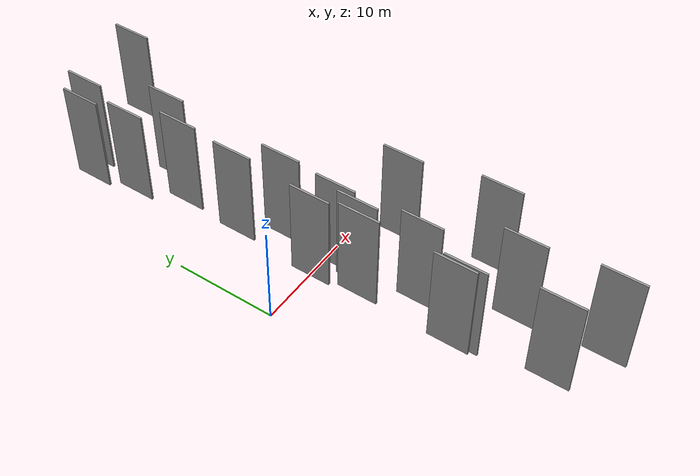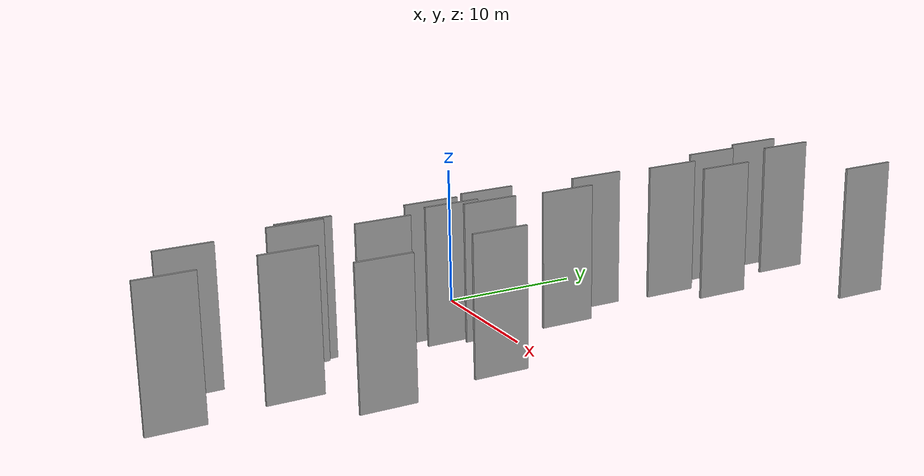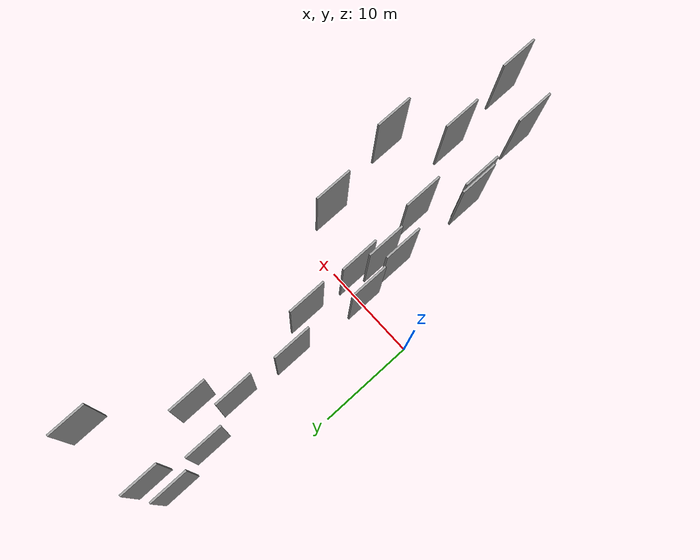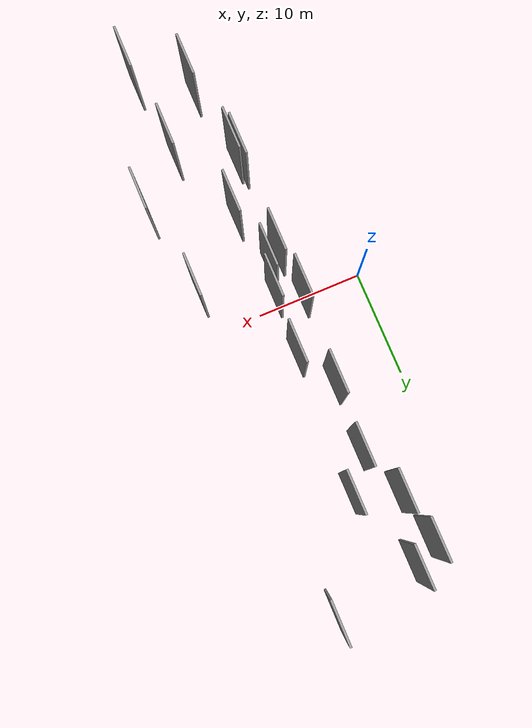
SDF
<sdf version="1.6">
 <world name="default">
  <scene>
   <sky><clouds><speed>12</speed></clouds></sky>
   <ambient>0.4 0.4 0.4 1</ambient>
   <background>0.7 0.7 0.7 1</background>
   <shadows>1</shadows>
  </scene>
  <gravity>0 0 -9.8066</gravity>
  <magnetic_field>6e-06 2.3e-05 -4.2e-05</magnetic_field>
  <physics default="0" name="default_physics" type="ode">
   <ode>
    <solver>
     <type>quick</type>
     <iters>10</iters>
     <sor>1.0</sor>
     <use_dynamic_moi_rescaling>0</use_dynamic_moi_rescaling>
    </solver>
    <constraints>
     <cfm>0</cfm>
     <erp>0.2</erp>
     <contact_max_correcting_vel>100</contact_max_correcting_vel>
     <contact_surface_layer>0.001</contact_surface_layer>
    </constraints>
   </ode>
   <max_step_size>0.004</max_step_size>
   <real_time_factor>1</real_time_factor>
   <real_time_update_rate>250</real_time_update_rate>
  </physics>
  <light name="sun" type="directional">
   <pose>0 0 10 0 0 0</pose>
   <diffuse>0.8 0.8 0.8 1</diffuse>
   <specular>0.2 0.2 0.2 1</specular>
   <attenuation>
    <range>1000</range>
    <constant>0.9</constant>
    <linear>0.01</linear>
    <quadratic>0.001</quadratic>
   </attenuation>
   <direction>-0.5 0.1 -0.9</direction>
  </light>
  <model name="grey_wall_1">
   <static>1</static>
   <pose>14.4835 -3.7706 0.0 0.000000 0.000000 1.570796</pose>
   <link name="link">
    <pose>0 0 5.00 0 0 0</pose>
    <collision name="collision"><geometry><box><size>4.00 0.2 10.00</size></box></geometry></collision>
    <visual name="visual">
     <cast_shadows>0</cast_shadows>
     <geometry><box><size>4.00 0.2 10.00</size></box></geometry>
     <material>
      <script>
       <uri>model://grey_wall/materials/scripts</uri>
       <uri>model://grey_wall/materials/textures</uri>
       <name>vrc/grey_wall</name>
      </script>
     </material>
    </visual>
   </link>
  </model>
  <model name="grey_wall_2">
   <static>1</static>
   <pose>4.2419 24.3647 0.0 0.000000 0.000000 1.570796</pose>
   <link name="link">
    <pose>0 0 5.00 0 0 0</pose>
    <collision name="collision"><geometry><box><size>4.00 0.2 10.00</size></box></geometry></collision>
    <visual name="visual">
     <cast_shadows>0</cast_shadows>
     <geometry><box><size>4.00 0.2 10.00</size></box></geometry>
     <material>
      <script>
       <uri>model://grey_wall/materials/scripts</uri>
       <uri>model://grey_wall/materials/textures</uri>
       <name>vrc/grey_wall</name>
      </script>
     </material>
    </visual>
   </link>
  </model>
  <model name="grey_wall_3">
   <static>1</static>
   <pose>8.4709 4.9242 0.0 0.000000 0.000000 1.570796</pose>
   <link name="link">
    <pose>0 0 5.00 0 0 0</pose>
    <collision name="collision"><geometry><box><size>4.00 0.2 10.00</size></box></geometry></collision>
    <visual name="visual">
     <cast_shadows>0</cast_shadows>
     <geometry><box><size>4.00 0.2 10.00</size></box></geometry>
     <material>
      <script>
       <uri>model://grey_wall/materials/scripts</uri>
       <uri>model://grey_wall/materials/textures</uri>
       <name>vrc/grey_wall</name>
      </script>
     </material>
    </visual>
   </link>
  </model>
  <model name="grey_wall_4">
   <static>1</static>
   <pose>6.3577 8.5996 0.0 0.000000 0.000000 1.570796</pose>
   <link name="link">
    <pose>0 0 5.00 0 0 0</pose>
    <collision name="collision"><geometry><box><size>4.00 0.2 10.00</size></box></geometry></collision>
    <visual name="visual">
     <cast_shadows>0</cast_shadows>
     <geometry><box><size>4.00 0.2 10.00</size></box></geometry>
     <material>
      <script>
       <uri>model://grey_wall/materials/scripts</uri>
       <uri>model://grey_wall/materials/textures</uri>
       <name>vrc/grey_wall</name>
      </script>
     </material>
    </visual>
   </link>
  </model>
  <model name="grey_wall_5">
   <static>1</static>
   <pose>8.1315 -1.0500 0.0 0.000000 0.000000 1.570796</pose>
   <link name="link">
    <pose>0 0 5.00 0 0 0</pose>
    <collision name="collision"><geometry><box><size>4.00 0.2 10.00</size></box></geometry></collision>
    <visual name="visual">
     <cast_shadows>0</cast_shadows>
     <geometry><box><size>4.00 0.2 10.00</size></box></geometry>
     <material>
      <script>
       <uri>model://grey_wall/materials/scripts</uri>
       <uri>model://grey_wall/materials/textures</uri>
       <name>vrc/grey_wall</name>
      </script>
     </material>
    </visual>
   </link>
  </model>
  <model name="grey_wall_6">
   <static>1</static>
   <pose>8.6236 -9.3073 0.0 0.000000 0.000000 1.570796</pose>
   <link name="link">
    <pose>0 0 5.00 0 0 0</pose>
    <collision name="collision"><geometry><box><size>4.00 0.2 10.00</size></box></geometry></collision>
    <visual name="visual">
     <cast_shadows>0</cast_shadows>
     <geometry><box><size>4.00 0.2 10.00</size></box></geometry>
     <material>
      <script>
       <uri>model://grey_wall/materials/scripts</uri>
       <uri>model://grey_wall/materials/textures</uri>
       <name>vrc/grey_wall</name>
      </script>
     </material>
    </visual>
   </link>
  </model>
  <model name="grey_wall_7">
   <static>1</static>
   <pose>6.7462 14.9992 0.0 0.000000 0.000000 1.570796</pose>
   <link name="link">
    <pose>0 0 5.00 0 0 0</pose>
    <collision name="collision"><geometry><box><size>4.00 0.2 10.00</size></box></geometry></collision>
    <visual name="visual">
     <cast_shadows>0</cast_shadows>
     <geometry><box><size>4.00 0.2 10.00</size></box></geometry>
     <material>
      <script>
       <uri>model://grey_wall/materials/scripts</uri>
       <uri>model://grey_wall/materials/textures</uri>
       <name>vrc/grey_wall</name>
      </script>
     </material>
    </visual>
   </link>
  </model>
  <model name="grey_wall_8">
   <static>1</static>
   <pose>6.3653 25.8315 0.0 0.000000 0.000000 1.570796</pose>
   <link name="link">
    <pose>0 0 5.00 0 0 0</pose>
    <collision name="collision"><geometry><box><size>4.00 0.2 10.00</size></box></geometry></collision>
    <visual name="visual">
     <cast_shadows>0</cast_shadows>
     <geometry><box><size>4.00 0.2 10.00</size></box></geometry>
     <material>
      <script>
       <uri>model://grey_wall/materials/scripts</uri>
       <uri>model://grey_wall/materials/textures</uri>
       <name>vrc/grey_wall</name>
      </script>
     </material>
    </visual>
   </link>
  </model>
  <model name="grey_wall_9">
   <static>1</static>
   <pose>15.9297 -12.6422 0.0 0.000000 0.000000 1.570796</pose>
   <link name="link">
    <pose>0 0 5.00 0 0 0</pose>
    <collision name="collision"><geometry><box><size>4.00 0.2 10.00</size></box></geometry></collision>
    <visual name="visual">
     <cast_shadows>0</cast_shadows>
     <geometry><box><size>4.00 0.2 10.00</size></box></geometry>
     <material>
      <script>
       <uri>model://grey_wall/materials/scripts</uri>
       <uri>model://grey_wall/materials/textures</uri>
       <name>vrc/grey_wall</name>
      </script>
     </material>
    </visual>
   </link>
  </model>
  <model name="grey_wall_10">
   <static>1</static>
   <pose>6.1259 -13.8811 0.0 0.000000 0.000000 1.570796</pose>
   <link name="link">
    <pose>0 0 5.00 0 0 0</pose>
    <collision name="collision"><geometry><box><size>4.00 0.2 10.00</size></box></geometry></collision>
    <visual name="visual">
     <cast_shadows>0</cast_shadows>
     <geometry><box><size>4.00 0.2 10.00</size></box></geometry>
     <material>
      <script>
       <uri>model://grey_wall/materials/scripts</uri>
       <uri>model://grey_wall/materials/textures</uri>
       <name>vrc/grey_wall</name>
      </script>
     </material>
    </visual>
   </link>
  </model>
  <model name="grey_wall_11">
   <static>1</static>
   <pose>6.4579 -14.5837 0.0 0.000000 0.000000 1.570796</pose>
   <link name="link">
    <pose>0 0 5.00 0 0 0</pose>
    <collision name="collision"><geometry><box><size>4.00 0.2 10.00</size></box></geometry></collision>
    <visual name="visual">
     <cast_shadows>0</cast_shadows>
     <geometry><box><size>4.00 0.2 10.00</size></box></geometry>
     <material>
      <script>
       <uri>model://grey_wall/materials/scripts</uri>
       <uri>model://grey_wall/materials/textures</uri>
       <name>vrc/grey_wall</name>
      </script>
     </material>
    </visual>
   </link>
  </model>
  <model name="grey_wall_12">
   <static>1</static>
   <pose>8.9955 18.2518 0.0 0.000000 0.000000 1.570796</pose>
   <link name="link">
    <pose>0 0 5.00 0 0 0</pose>
    <collision name="collision"><geometry><box><size>4.00 0.2 10.00</size></box></geometry></collision>
    <visual name="visual">
     <cast_shadows>0</cast_shadows>
     <geometry><box><size>4.00 0.2 10.00</size></box></geometry>
     <material>
      <script>
       <uri>model://grey_wall/materials/scripts</uri>
       <uri>model://grey_wall/materials/textures</uri>
       <name>vrc/grey_wall</name>
      </script>
     </material>
    </visual>
   </link>
  </model>
  <model name="grey_wall_13">
   <static>1</static>
   <pose>11.6406 -17.1430 0.0 0.000000 0.000000 1.570796</pose>
   <link name="link">
    <pose>0 0 5.00 0 0 0</pose>
    <collision name="collision"><geometry><box><size>4.00 0.2 10.00</size></box></geometry></collision>
    <visual name="visual">
     <cast_shadows>0</cast_shadows>
     <geometry><box><size>4.00 0.2 10.00</size></box></geometry>
     <material>
      <script>
       <uri>model://grey_wall/materials/scripts</uri>
       <uri>model://grey_wall/materials/textures</uri>
       <name>vrc/grey_wall</name>
      </script>
     </material>
    </visual>
   </link>
  </model>
  <model name="grey_wall_14">
   <static>1</static>
   <pose>14.3131 27.1955 0.0 0.000000 0.000000 1.570796</pose>
   <link name="link">
    <pose>0 0 5.00 0 0 0</pose>
    <collision name="collision"><geometry><box><size>4.00 0.2 10.00</size></box></geometry></collision>
    <visual name="visual">
     <cast_shadows>0</cast_shadows>
     <geometry><box><size>4.00 0.2 10.00</size></box></geometry>
     <material>
      <script>
       <uri>model://grey_wall/materials/scripts</uri>
       <uri>model://grey_wall/materials/textures</uri>
       <name>vrc/grey_wall</name>
      </script>
     </material>
    </visual>
   </link>
  </model>
  <model name="grey_wall_15">
   <static>1</static>
   <pose>5.0804 19.7697 0.0 0.000000 0.000000 1.570796</pose>
   <link name="link">
    <pose>0 0 5.00 0 0 0</pose>
    <collision name="collision"><geometry><box><size>4.00 0.2 10.00</size></box></geometry></collision>
    <visual name="visual">
     <cast_shadows>0</cast_shadows>
     <geometry><box><size>4.00 0.2 10.00</size></box></geometry>
     <material>
      <script>
       <uri>model://grey_wall/materials/scripts</uri>
       <uri>model://grey_wall/materials/textures</uri>
       <name>vrc/grey_wall</name>
      </script>
     </material>
    </visual>
   </link>
  </model>
  <model name="grey_wall_16">
   <static>1</static>
   <pose>6.3404 -4.6513 0.0 0.000000 0.000000 1.570796</pose>
   <link name="link">
    <pose>0 0 5.00 0 0 0</pose>
    <collision name="collision"><geometry><box><size>4.00 0.2 10.00</size></box></geometry></collision>
    <visual name="visual">
     <cast_shadows>0</cast_shadows>
     <geometry><box><size>4.00 0.2 10.00</size></box></geometry>
     <material>
      <script>
       <uri>model://grey_wall/materials/scripts</uri>
       <uri>model://grey_wall/materials/textures</uri>
       <name>vrc/grey_wall</name>
      </script>
     </material>
    </visual>
   </link>
  </model>
  <model name="grey_wall_17">
   <static>1</static>
   <pose>7.5136 -3.6938 0.0 0.000000 0.000000 1.570796</pose>
   <link name="link">
    <pose>0 0 5.00 0 0 0</pose>
    <collision name="collision"><geometry><box><size>4.00 0.2 10.00</size></box></geometry></collision>
    <visual name="visual">
     <cast_shadows>0</cast_shadows>
     <geometry><box><size>4.00 0.2 10.00</size></box></geometry>
     <material>
      <script>
       <uri>model://grey_wall/materials/scripts</uri>
       <uri>model://grey_wall/materials/textures</uri>
       <name>vrc/grey_wall</name>
      </script>
     </material>
    </visual>
   </link>
  </model>
  <model name="grey_wall_18">
   <static>1</static>
   <pose>7.5839 -22.4577 0.0 0.000000 0.000000 1.570796</pose>
   <link name="link">
    <pose>0 0 5.00 0 0 0</pose>
    <collision name="collision"><geometry><box><size>4.00 0.2 10.00</size></box></geometry></collision>
    <visual name="visual">
     <cast_shadows>0</cast_shadows>
     <geometry><box><size>4.00 0.2 10.00</size></box></geometry>
     <material>
      <script>
       <uri>model://grey_wall/materials/scripts</uri>
       <uri>model://grey_wall/materials/textures</uri>
       <name>vrc/grey_wall</name>
      </script>
     </material>
    </visual>
   </link>
  </model>
  <model name="grey_wall_19">
   <static>1</static>
   <pose>12.3964 -25.2359 0.0 0.000000 0.000000 1.570796</pose>
   <link name="link">
    <pose>0 0 5.00 0 0 0</pose>
    <collision name="collision"><geometry><box><size>4.00 0.2 10.00</size></box></geometry></collision>
    <visual name="visual">
     <cast_shadows>0</cast_shadows>
     <geometry><box><size>4.00 0.2 10.00</size></box></geometry>
     <material>
      <script>
       <uri>model://grey_wall/materials/scripts</uri>
       <uri>model://grey_wall/materials/textures</uri>
       <name>vrc/grey_wall</name>
      </script>
     </material>
    </visual>
   </link>
  </model>
  <model name="grey_wall_20">
   <static>1</static>
   <pose>5.8139 -0.0483 0.0 0.000000 0.000000 1.570796</pose>
   <link name="link">
    <pose>0 0 5.00 0 0 0</pose>
    <collision name="collision"><geometry><box><size>4.00 0.2 10.00</size></box></geometry></collision>
    <visual name="visual">
     <cast_shadows>0</cast_shadows>
     <geometry><box><size>4.00 0.2 10.00</size></box></geometry>
     <material>
      <script>
       <uri>model://grey_wall/materials/scripts</uri>
       <uri>model://grey_wall/materials/textures</uri>
       <name>vrc/grey_wall</name>
      </script>
     </material>
    </visual>
   </link>
  </model>
 </world>
</sdf>
